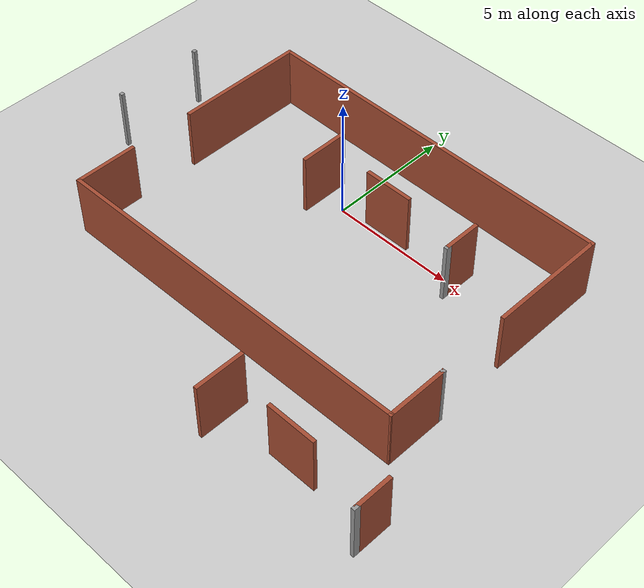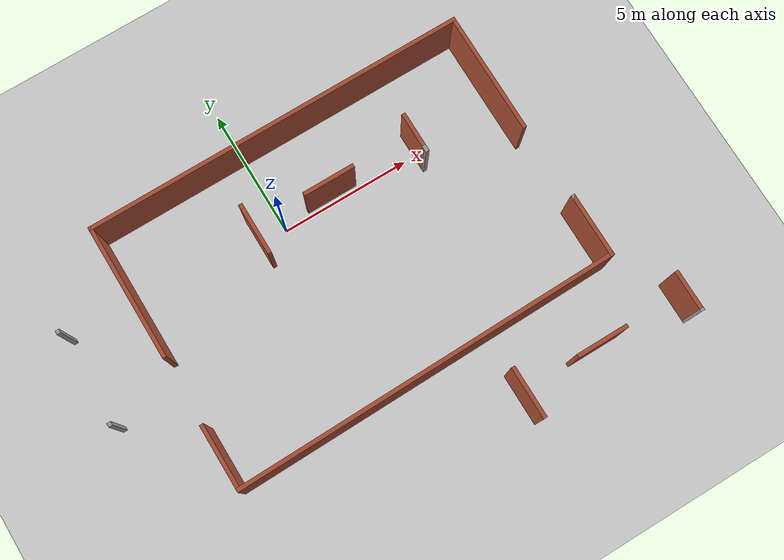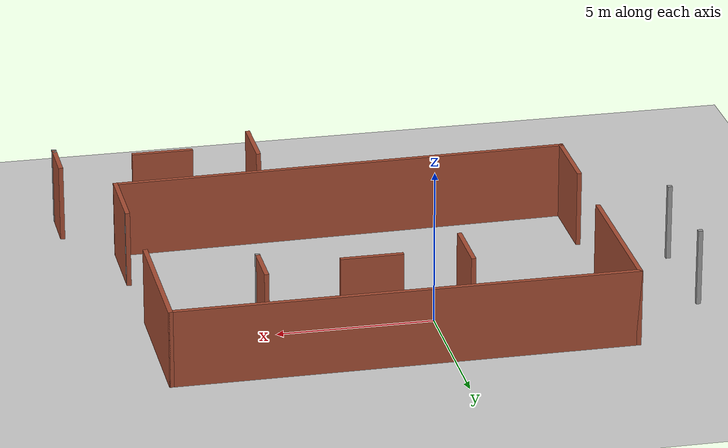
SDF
<sdf version="1.7">
 <world name="default">
  <light name="sun" type="directional">
   <pose>0 0 10 0 -0 0</pose>
   <diffuse>0.8 0.8 0.8 1</diffuse>
   <specular>0.2 0.2 0.2 1</specular>
   <attenuation>
    <range>1000</range>
    <constant>0.9</constant>
    <linear>0.01</linear>
    <quadratic>0.001</quadratic>
   </attenuation>
   <direction>-0.5 0.1 -0.9</direction>
   <spot><inner_angle>0</inner_angle><outer_angle>0</outer_angle><falloff>0</falloff></spot>
  </light>
  <model name="ground_plane">
   <static>1</static>
   <link name="link">
    <collision name="collision">
     <geometry><plane><normal>0 0 1</normal><size>100 100</size></plane></geometry>
     <surface>
      <contact><collide_bitmask>65535</collide_bitmask></contact>
      <friction><ode><mu>100</mu><mu2>50</mu2></ode></friction>
     </surface>
    </collision>
    <visual name="visual">
     <cast_shadows>0</cast_shadows>
     <geometry><plane><normal>0 0 1</normal><size>100 100</size></plane></geometry>
     <material>
      <script><uri>file://media/materials/scripts/gazebo.material</uri><name>Gazebo/Grey</name></script>
     </material>
    </visual>
   </link>
  </model>
  <gravity>0 0 -9.8</gravity>
  <magnetic_field>6e-06 2.3e-05 -4.2e-05</magnetic_field>
  <atmosphere type="adiabatic"/>
  <physics type="ode">
   <max_step_size>0.001</max_step_size>
   <real_time_factor>1</real_time_factor>
   <real_time_update_rate>1000</real_time_update_rate>
  </physics>
  <scene><ambient>0.4 0.4 0.4 1</ambient><background>0.7 0.7 0.7 1</background><shadows>1</shadows></scene>
  <audio><device>default</device></audio>
  <spherical_coordinates>
   <surface_model>EARTH_WGS84</surface_model>
   <latitude_deg>0</latitude_deg>
   <longitude_deg>0</longitude_deg>
   <elevation>0</elevation>
   <heading_deg>0</heading_deg>
  </spherical_coordinates>
  <model name="cours">
   <pose>0.232331 -2.12457 0 0 -0 0</pose>
   <link name="Wall_0">
    <collision name="Wall_0_Collision">
     <geometry><box><size>2.5 0.15 2.5</size></box></geometry>
     <pose>0 0 1.25 0 -0 0</pose>
    </collision>
    <visual name="Wall_0_Visual">
     <pose>0 0 1.25 0 -0 0</pose>
     <geometry><box><size>2.5 0.15 2.5</size></box></geometry>
     <material>
      <script><uri>file://media/materials/scripts/gazebo.material</uri><name>Gazebo/Bricks</name></script>
      <ambient>1 1 1 1</ambient>
     </material>
     <meta><layer>0</layer></meta>
    </visual>
    <pose>-6.08871 -3.88065 0 0 -0 -1.5708</pose>
   </link>
   <link name="Wall_1">
    <collision name="Wall_1_Collision">
     <geometry><box><size>14.8989 0.15 2.5</size></box></geometry>
     <pose>0 0 1.25 0 -0 0</pose>
    </collision>
    <visual name="Wall_1_Visual">
     <pose>0 0 1.25 0 -0 0</pose>
     <geometry><box><size>14.8989 0.15 2.5</size></box></geometry>
     <material>
      <script><uri>file://media/materials/scripts/gazebo.material</uri><name>Gazebo/Bricks</name></script>
      <ambient>1 1 1 1</ambient>
     </material>
     <meta><layer>0</layer></meta>
    </visual>
    <pose>1.2852 -4.98897 0 0 -0 0.015315</pose>
   </link>
   <link name="Wall_10">
    <collision name="Wall_10_Collision">
     <geometry><box><size>0.15 0.15 2.5</size></box></geometry>
     <pose>0 0 1.25 0 -0 0</pose>
    </collision>
    <visual name="Wall_10_Visual">
     <pose>0 0 1.25 0 -0 0</pose>
     <geometry><box><size>0.15 0.15 2.5</size></box></geometry>
     <material>
      <script><uri>file://media/materials/scripts/gazebo.material</uri><name>Gazebo/Grey</name></script>
      <ambient>1 1 1 1</ambient>
     </material>
     <meta><layer>0</layer></meta>
    </visual>
    <pose>-8.65993 -1.05704 0 0 -0 0</pose>
   </link>
   <link name="Wall_12">
    <collision name="Wall_12_Collision">
     <geometry><box><size>5.25 0.15 2.5</size></box></geometry>
     <pose>0 0 1.25 0 -0 0</pose>
    </collision>
    <visual name="Wall_12_Visual">
     <pose>0 0 1.25 0 -0 0</pose>
     <geometry><box><size>5.25 0.15 2.5</size></box></geometry>
     <material>
      <script><uri>file://media/materials/scripts/gazebo.material</uri><name>Gazebo/Bricks</name></script>
      <ambient>1 1 1 1</ambient>
     </material>
     <meta><layer>0</layer></meta>
    </visual>
    <pose>-6.03171 2.55305 0 0 -0 1.5708</pose>
   </link>
   <link name="Wall_13">
    <collision name="Wall_13_Collision">
     <geometry><box><size>14.75 0.15 2.5</size></box></geometry>
     <pose>0 0 1.25 0 -0 0</pose>
    </collision>
    <visual name="Wall_13_Visual">
     <pose>0 0 1.25 0 -0 0</pose>
     <geometry><box><size>14.75 0.15 2.5</size></box></geometry>
     <material>
      <script><uri>file://media/materials/scripts/gazebo.material</uri><name>Gazebo/Bricks</name></script>
      <ambient>1 1 1 1</ambient>
     </material>
     <meta><layer>0</layer></meta>
    </visual>
    <pose>1.26829 5.10305 0 0 -0 0</pose>
   </link>
   <link name="Wall_14">
    <collision name="Wall_14_Collision">
     <geometry><box><size>4.75 0.15 2.5</size></box></geometry>
     <pose>0 0 1.25 0 -0 0</pose>
    </collision>
    <visual name="Wall_14_Visual">
     <pose>0 0 1.25 0 -0 0</pose>
     <geometry><box><size>4.75 0.15 2.5</size></box></geometry>
     <material>
      <script><uri>file://media/materials/scripts/gazebo.material</uri><name>Gazebo/Bricks</name></script>
      <ambient>1 1 1 1</ambient>
     </material>
     <meta><layer>0</layer></meta>
    </visual>
    <pose>8.56829 2.80305 0 0 -0 -1.5708</pose>
   </link>
   <link name="Wall_2">
    <collision name="Wall_2_Collision">
     <geometry><box><size>2.5 0.15 2.5</size></box></geometry>
     <pose>0 0 1.25 0 -0 0</pose>
    </collision>
    <visual name="Wall_2_Visual">
     <pose>0 0 1.25 0 -0 0</pose>
     <geometry><box><size>2.5 0.15 2.5</size></box></geometry>
     <material>
      <script><uri>file://media/materials/scripts/gazebo.material</uri><name>Gazebo/Bricks</name></script>
      <ambient>1 1 1 1</ambient>
     </material>
     <meta><layer>0</layer></meta>
    </visual>
    <pose>8.65911 -3.70103 0 0 -0 1.5708</pose>
   </link>
   <link name="Wall_3">
    <collision name="Wall_3_Collision">
     <geometry><box><size>0.15 0.15 2.5</size></box></geometry>
     <pose>0 0 1.25 0 -0 0</pose>
    </collision>
    <visual name="Wall_3_Visual">
     <pose>0 0 1.25 0 -0 0</pose>
     <geometry><box><size>0.15 0.15 2.5</size></box></geometry>
     <material>
      <script><uri>file://media/materials/scripts/gazebo.material</uri><name>Gazebo/Grey</name></script>
      <ambient>1 1 1 1</ambient>
     </material>
     <meta><layer>0</layer></meta>
    </visual>
    <pose>8.65911 -2.52603 0 0 -0 0</pose>
   </link>
   <link name="Wall_4">
    <collision name="Wall_4_Collision">
     <geometry><box><size>0.15 0.15 2.5</size></box></geometry>
     <pose>0 0 1.25 0 -0 0</pose>
    </collision>
    <visual name="Wall_4_Visual">
     <pose>0 0 1.25 0 -0 0</pose>
     <geometry><box><size>0.15 0.15 2.5</size></box></geometry>
     <material>
      <script><uri>file://media/materials/scripts/gazebo.material</uri><name>Gazebo/Grey</name></script>
      <ambient>1 1 1 1</ambient>
     </material>
     <meta><layer>0</layer></meta>
    </visual>
    <pose>8.65911 -2.52603 0 0 -0 0</pose>
   </link>
   <link name="Wall_8">
    <collision name="Wall_8_Collision">
     <geometry><box><size>0.15 0.15 2.5</size></box></geometry>
     <pose>0 0 1.25 0 -0 0</pose>
    </collision>
    <visual name="Wall_8_Visual">
     <pose>0 0 1.25 0 -0 0</pose>
     <geometry><box><size>0.15 0.15 2.5</size></box></geometry>
     <material>
      <script><uri>file://media/materials/scripts/gazebo.material</uri><name>Gazebo/Grey</name></script>
      <ambient>1 1 1 1</ambient>
     </material>
     <meta><layer>0</layer></meta>
    </visual>
    <pose>-8.65993 2.54296 0 0 -0 0</pose>
   </link>
   <static>1</static>
  </model>
  <model name="wall">
   <pose>2.22419 0.661588 0 0 -0 0</pose>
   <link name="Wall_10">
    <collision name="Wall_10_Collision">
     <geometry><box><size>2 0.15 2.5</size></box></geometry>
     <pose>0 0 1.25 0 -0 0</pose>
    </collision>
    <visual name="Wall_10_Visual">
     <pose>0 0 1.25 0 -0 0</pose>
     <geometry><box><size>2 0.15 2.5</size></box></geometry>
     <material>
      <script><uri>file://media/materials/scripts/gazebo.material</uri><name>Gazebo/Bricks</name></script>
      <ambient>1 1 1 1</ambient>
     </material>
     <meta><layer>0</layer></meta>
    </visual>
    <pose>-3.23548 -0.597954 0 0 -0 -1.5708</pose>
   </link>
   <link name="Wall_13">
    <collision name="Wall_13_Collision">
     <geometry><box><size>1.5 0.15 2.5</size></box></geometry>
     <pose>0 0 1.25 0 -0 0</pose>
    </collision>
    <visual name="Wall_13_Visual">
     <pose>0 0 1.25 0 -0 0</pose>
     <geometry><box><size>1.5 0.15 2.5</size></box></geometry>
     <material>
      <script><uri>file://media/materials/scripts/gazebo.material</uri><name>Gazebo/Bricks</name></script>
      <ambient>1 1 1 1</ambient>
     </material>
     <meta><layer>0</layer></meta>
    </visual>
    <pose>3.23548 -0.484867 0 0 -0 -1.5708</pose>
   </link>
   <link name="Wall_14">
    <collision name="Wall_14_Collision">
     <geometry><box><size>0.25 0.15 2.5</size></box></geometry>
     <pose>0 0 1.25 0 -0 0</pose>
    </collision>
    <visual name="Wall_14_Visual">
     <pose>0 0 1.25 0 -0 0</pose>
     <geometry><box><size>0.25 0.15 2.5</size></box></geometry>
     <material>
      <script><uri>file://media/materials/scripts/gazebo.material</uri><name>Gazebo/Grey</name></script>
      <ambient>1 1 1 1</ambient>
     </material>
     <meta><layer>0</layer></meta>
    </visual>
    <pose>3.23548 -1.20987 0 0 -0 -1.5708</pose>
   </link>
   <link name="Wall_6">
    <collision name="Wall_6_Collision">
     <geometry><box><size>2 0.15 2.5</size></box></geometry>
     <pose>0 0 1.25 0 -0 0</pose>
    </collision>
    <visual name="Wall_6_Visual">
     <pose>0 0 1.25 0 -0 0</pose>
     <geometry><box><size>2 0.15 2.5</size></box></geometry>
     <material>
      <script><uri>file://media/materials/scripts/gazebo.material</uri><name>Gazebo/Bricks</name></script>
      <ambient>1 1 1 1</ambient>
     </material>
     <meta><layer>0</layer></meta>
    </visual>
    <pose>-0.200839 -0.429097 0 0 -0 0</pose>
   </link>
   <static>1</static>
  </model>
  <model name="wall_0">
   <pose>7.1903 -8.89756 0 0 -0 0</pose>
   <link name="Wall_10">
    <collision name="Wall_10_Collision">
     <geometry><box><size>2 0.15 2.5</size></box></geometry>
     <pose>0 0 1.25 0 -0 0</pose>
    </collision>
    <visual name="Wall_10_Visual">
     <pose>0 0 1.25 0 -0 0</pose>
     <geometry><box><size>2 0.15 2.5</size></box></geometry>
     <material>
      <script><uri>file://media/materials/scripts/gazebo.material</uri><name>Gazebo/Bricks</name></script>
      <ambient>1 1 1 1</ambient>
     </material>
     <meta><layer>0</layer></meta>
    </visual>
    <pose>-3.23548 -0.597954 0 0 -0 -1.5708</pose>
   </link>
   <link name="Wall_13">
    <collision name="Wall_13_Collision">
     <geometry><box><size>1.5 0.15 2.5</size></box></geometry>
     <pose>0 0 1.25 0 -0 0</pose>
    </collision>
    <visual name="Wall_13_Visual">
     <pose>0 0 1.25 0 -0 0</pose>
     <geometry><box><size>1.5 0.15 2.5</size></box></geometry>
     <material>
      <script><uri>file://media/materials/scripts/gazebo.material</uri><name>Gazebo/Bricks</name></script>
      <ambient>1 1 1 1</ambient>
     </material>
     <meta><layer>0</layer></meta>
    </visual>
    <pose>3.23548 -0.484867 0 0 -0 -1.5708</pose>
   </link>
   <link name="Wall_14">
    <collision name="Wall_14_Collision">
     <geometry><box><size>0.25 0.15 2.5</size></box></geometry>
     <pose>0 0 1.25 0 -0 0</pose>
    </collision>
    <visual name="Wall_14_Visual">
     <pose>0 0 1.25 0 -0 0</pose>
     <geometry><box><size>0.25 0.15 2.5</size></box></geometry>
     <material>
      <script><uri>file://media/materials/scripts/gazebo.material</uri><name>Gazebo/Grey</name></script>
      <ambient>1 1 1 1</ambient>
     </material>
     <meta><layer>0</layer></meta>
    </visual>
    <pose>3.23548 -1.20987 0 0 -0 -1.5708</pose>
   </link>
   <link name="Wall_6">
    <collision name="Wall_6_Collision">
     <geometry><box><size>2 0.15 2.5</size></box></geometry>
     <pose>0 0 1.25 0 -0 0</pose>
    </collision>
    <visual name="Wall_6_Visual">
     <pose>0 0 1.25 0 -0 0</pose>
     <geometry><box><size>2 0.15 2.5</size></box></geometry>
     <material>
      <script><uri>file://media/materials/scripts/gazebo.material</uri><name>Gazebo/Bricks</name></script>
      <ambient>1 1 1 1</ambient>
     </material>
     <meta><layer>0</layer></meta>
    </visual>
    <pose>-0.200839 -0.429097 0 0 -0 0</pose>
   </link>
   <static>1</static>
  </model>
 </world>
</sdf>
